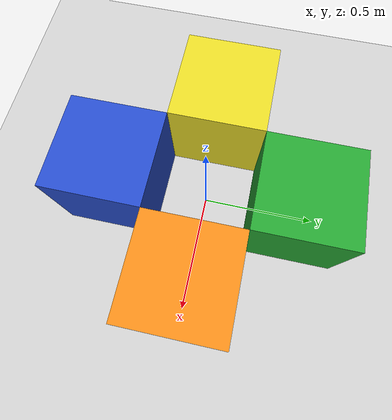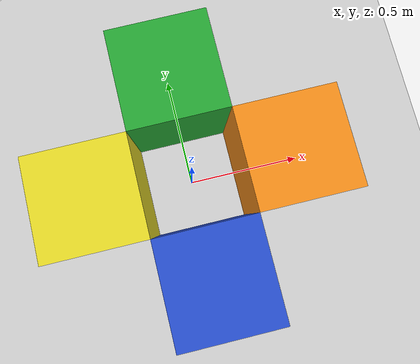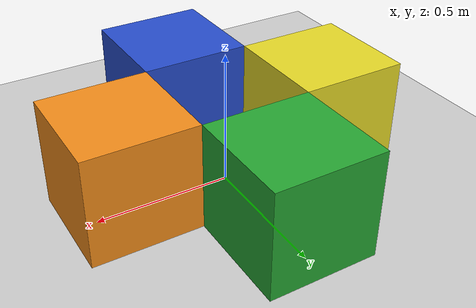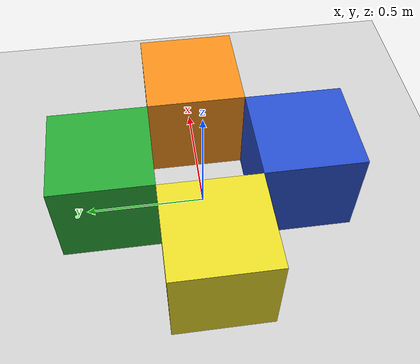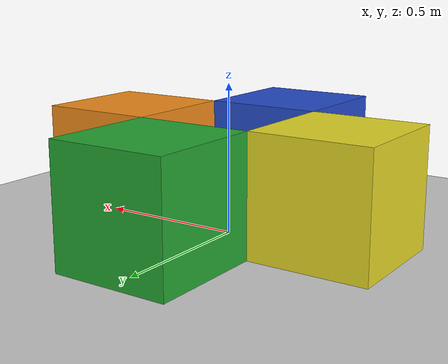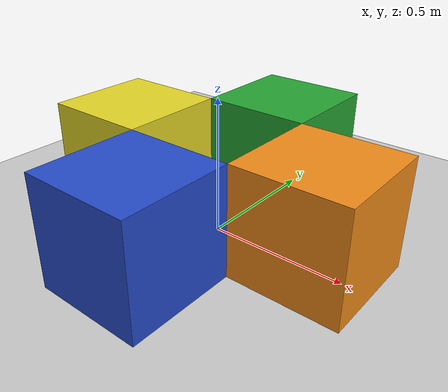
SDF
<?xml version="1.0"?>
<sdf version="1.5">
  <world name="fluid_world">

	<gui>
	  <camera name="fluid_camera">
		<pose>-3 0 2 0 0.4 0</pose>
	  </camera>
	</gui>

    <include>
      <uri>model://ground_plane</uri>
        <pose>0.0 0.0 0.0 0.0 0.0 0.0</pose>
    </include>

    <include>
      <uri>model://sun</uri>
    </include>

    <model name="green_box">
        <pose>0.0 0.4 0.2 0.0 -0.0 0.0</pose>
        <link name="green_box_link">
            <pose>0.0 0.0 0.0 0.0 -0.0 0.0</pose>
            <inertial>
                <pose>0.0 0.0 0.0 0.0 -0.0 0.0</pose>
                <inertia>
                    <ixx>3.6</ixx>
                    <ixy>0.0</ixy>
                    <ixz>0.0</ixz>
                    <iyy>3.6</iyy>
                    <iyz>0.0</iyz>
                    <izz>3.6</izz>
                </inertia>
                <mass>500.0</mass>
            </inertial>

            <collision name="green_box_collision">
                <pose>0.0 0.0 0.0 0.0 -0.0 0.0</pose>
                <geometry>
                    <box>
                        <size>0.4 0.4 0.4</size>
                    </box>
                </geometry>
				<surface>
				  <friction>
				    <ode>
				      <mu>0.1</mu>
				      <mu2>0.1</mu2>
				    </ode>
				  </friction>
				</surface>
            </collision>

            <visual name="green_box_visual">
                <pose>0.0 0.0 0.0 0.0 -0.0 0.0</pose>
                <geometry>
                    <box>
                        <size>0.4 0.4 0.4</size>
                    </box>
                </geometry>
                <material>
                    <script>
                        <uri>file://media/materials/scripts/gazebo.material</uri>
                        <name>Gazebo/Green</name>
                    </script>
                </material>
            </visual>
			<gravity>1</gravity>
        </link>
		<static>0</static>
    </model>

    <model name="blue_box">
        <pose>0.0 -0.4 0.2 0.0 -0.0 0.0</pose>
        <link name="blue_box_link">
            <pose>0.0 0.0 0.0 0.0 -0.0 0.0</pose>
            <inertial>
                <pose>0.0 0.0 0.0 0.0 -0.0 0.0</pose>
                <inertia>
                    <ixx>3.6</ixx>
                    <ixy>0.0</ixy>
                    <ixz>0.0</ixz>
                    <iyy>3.6</iyy>
                    <iyz>0.0</iyz>
                    <izz>3.6</izz>
                </inertia>
                <mass>500.0</mass>
            </inertial>

            <collision name="blue_box_collision">
                <pose>0.0 0.0 0.0 0.0 -0.0 0.0</pose>
                <geometry>
                    <box>
                        <size>0.4 0.4 0.4</size>
                    </box>
                </geometry>
				<surface>
				  <friction>
				    <ode>
				      <mu>0.1</mu>
				      <mu2>0.1</mu2>
				    </ode>
				  </friction>
				</surface>
            </collision>

            <visual name="blue_box_visual">
                <pose>0.0 0.0 0.0 0.0 -0.0 0.0</pose>
                <geometry>
                    <box>
                        <size>0.4 0.4 0.4</size>
                    </box>
                </geometry>
                <material>
                    <script>
                        <uri>file://media/materials/scripts/gazebo.material</uri>
                        <name>Gazebo/Blue</name>
                    </script>
                </material>
            </visual>
			<gravity>1</gravity>
        </link>
		<static>0</static>
    </model>

    <model name="orange_box">
        <pose>0.4 0.0 0.2 0.0 -0.0 0.0</pose>
        <link name="green_box_link">
            <pose>0.0 0.0 0.0 0.0 -0.0 0.0</pose>
            <inertial>
                <pose>0.0 0.0 0.0 0.0 -0.0 0.0</pose>
                <inertia>
                    <ixx>3.6</ixx>
                    <ixy>0.0</ixy>
                    <ixz>0.0</ixz>
                    <iyy>3.6</iyy>
                    <iyz>0.0</iyz>
                    <izz>3.6</izz>
                </inertia>
                <mass>500.0</mass>
            </inertial>

            <collision name="orange_box_collision">
                <pose>0.0 0.0 0.0 0.0 -0.0 0.0</pose>
                <geometry>
                    <box>
                        <size>0.4 0.4 0.4</size>
                    </box>
                </geometry>
				<surface>
				  <friction>
				    <ode>
				      <mu>0.1</mu>
				      <mu2>0.1</mu2>
				    </ode>
				  </friction>
				</surface>
            </collision>

            <visual name="orange_box_visual">
                <pose>0.0 0.0 0.0 0.0 -0.0 0.0</pose>
                <geometry>
                    <box>
                        <size>0.4 0.4 0.4</size>
                    </box>
                </geometry>
                <material>
                    <script>
                        <uri>file://media/materials/scripts/gazebo.material</uri>
                        <name>Gazebo/Orange</name>
                    </script>
                </material>
            </visual>
			<gravity>1</gravity>
        </link>
		<static>0</static>
    </model>

   <model name="yellow_box">
        <pose>-0.4 0.0 0.2 0.0 -0.0 0.0</pose>
        <link name="yellow_box_link">
            <pose>0.0 0.0 0.0 0.0 -0.0 0.0</pose>
            <inertial>
                <pose>0.0 0.0 0.0 0.0 -0.0 0.0</pose>
                <inertia>
                    <ixx>3.6</ixx>
                    <ixy>0.0</ixy>
                    <ixz>0.0</ixz>
                    <iyy>3.6</iyy>
                    <iyz>0.0</iyz>
                    <izz>3.6</izz>
                </inertia>
                <mass>500.0</mass>
            </inertial>

            <collision name="yellow_box_collision">
                <pose>0.0 0.0 0.0 0.0 -0.0 0.0</pose>
                <geometry>
                    <box>
                        <size>0.4 0.4 0.4</size>
                    </box>
                </geometry>
				<surface>
				  <friction>
				    <ode>
				      <mu>0.1</mu>
				      <mu2>0.1</mu2>
				    </ode>
				  </friction>
				</surface>
            </collision>

            <visual name="yellow_box_visual">
                <pose>0.0 0.0 0.0 0.0 -0.0 0.0</pose>
                <geometry>
                    <box>
                        <size>0.4 0.4 0.4</size>
                    </box>
                </geometry>
                <material>
                    <script>
                        <uri>file://media/materials/scripts/gazebo.material</uri>
                        <name>Gazebo/Yellow</name>
                    </script>
                </material>
            </visual>
			<gravity>1</gravity>
        </link>
		<static>0</static>
    </model>

    <plugin name="FluidWorldPlugin" filename="libFluidWorldPlugin.so">
		<world_position>0 0 5.01</world_position>
		<world_size>20 20 10</world_size>
		<fluid_position>0.0 0.0 0.75</fluid_position>
		<fluid_volume>0.35 0.35 1.4</fluid_volume>
		<particle_nr>0</particle_nr>
	</plugin>

  </world>
</sdf>
